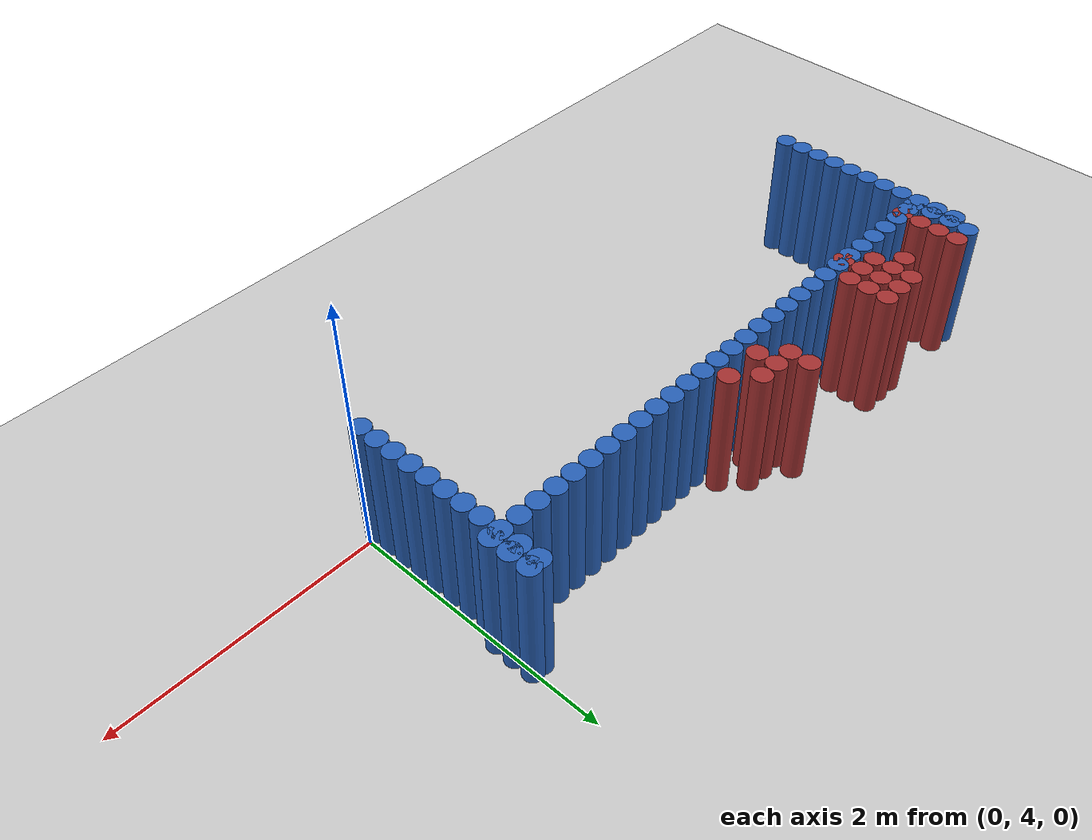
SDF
<sdf version="1.6">
 <world name="barn_world">
  <model name="ground_plane">
   <static>1</static>
   <link name="link">
    <collision name="collision">
     <geometry><plane><normal>0 0 1</normal><size>100 100</size></plane></geometry>
    </collision>
    <visual name="visual">
     <geometry><plane><normal>0 0 1</normal><size>100 100</size></plane></geometry>
     <material>
      <script><uri>file://media/materials/scripts/gazebo.material</uri><name>Gazebo/Grey</name></script>
     </material>
    </visual>
   </link>
  </model>
  <model name="unit_cylinder_80">
   <static>1</static>
   <pose>-0.0750 3.9750 0.5 0 0 0</pose>
   <link name="link">
    <collision name="collision">
     <geometry><cylinder><radius>0.075</radius><length>1</length></cylinder></geometry>
    </collision>
    <visual name="visual">
     <geometry><cylinder><radius>0.075</radius><length>1</length></cylinder></geometry>
     <material><ambient>0.152 0.379 0.72 1</ambient><diffuse>0.152 0.379 0.72 1</diffuse></material>
    </visual>
   </link>
  </model>
  <model name="unit_cylinder_81">
   <static>1</static>
   <pose>-4.4250 3.9750 0.5 0 0 0</pose>
   <link name="link">
    <collision name="collision">
     <geometry><cylinder><radius>0.075</radius><length>1</length></cylinder></geometry>
    </collision>
    <visual name="visual">
     <geometry><cylinder><radius>0.075</radius><length>1</length></cylinder></geometry>
     <material><ambient>0.152 0.379 0.72 1</ambient><diffuse>0.152 0.379 0.72 1</diffuse></material>
    </visual>
   </link>
  </model>
  <model name="unit_cylinder_82">
   <static>1</static>
   <pose>-0.0750 4.1250 0.5 0 0 0</pose>
   <link name="link">
    <collision name="collision">
     <geometry><cylinder><radius>0.075</radius><length>1</length></cylinder></geometry>
    </collision>
    <visual name="visual">
     <geometry><cylinder><radius>0.075</radius><length>1</length></cylinder></geometry>
     <material><ambient>0.152 0.379 0.72 1</ambient><diffuse>0.152 0.379 0.72 1</diffuse></material>
    </visual>
   </link>
  </model>
  <model name="unit_cylinder_83">
   <static>1</static>
   <pose>-4.4250 4.1250 0.5 0 0 0</pose>
   <link name="link">
    <collision name="collision">
     <geometry><cylinder><radius>0.075</radius><length>1</length></cylinder></geometry>
    </collision>
    <visual name="visual">
     <geometry><cylinder><radius>0.075</radius><length>1</length></cylinder></geometry>
     <material><ambient>0.152 0.379 0.72 1</ambient><diffuse>0.152 0.379 0.72 1</diffuse></material>
    </visual>
   </link>
  </model>
  <model name="unit_cylinder_84">
   <static>1</static>
   <pose>-0.0750 4.2750 0.5 0 0 0</pose>
   <link name="link">
    <collision name="collision">
     <geometry><cylinder><radius>0.075</radius><length>1</length></cylinder></geometry>
    </collision>
    <visual name="visual">
     <geometry><cylinder><radius>0.075</radius><length>1</length></cylinder></geometry>
     <material><ambient>0.152 0.379 0.72 1</ambient><diffuse>0.152 0.379 0.72 1</diffuse></material>
    </visual>
   </link>
  </model>
  <model name="unit_cylinder_85">
   <static>1</static>
   <pose>-4.4250 4.2750 0.5 0 0 0</pose>
   <link name="link">
    <collision name="collision">
     <geometry><cylinder><radius>0.075</radius><length>1</length></cylinder></geometry>
    </collision>
    <visual name="visual">
     <geometry><cylinder><radius>0.075</radius><length>1</length></cylinder></geometry>
     <material><ambient>0.152 0.379 0.72 1</ambient><diffuse>0.152 0.379 0.72 1</diffuse></material>
    </visual>
   </link>
  </model>
  <model name="unit_cylinder_86">
   <static>1</static>
   <pose>-0.0750 4.4250 0.5 0 0 0</pose>
   <link name="link">
    <collision name="collision">
     <geometry><cylinder><radius>0.075</radius><length>1</length></cylinder></geometry>
    </collision>
    <visual name="visual">
     <geometry><cylinder><radius>0.075</radius><length>1</length></cylinder></geometry>
     <material><ambient>0.152 0.379 0.72 1</ambient><diffuse>0.152 0.379 0.72 1</diffuse></material>
    </visual>
   </link>
  </model>
  <model name="unit_cylinder_87">
   <static>1</static>
   <pose>-4.4250 4.4250 0.5 0 0 0</pose>
   <link name="link">
    <collision name="collision">
     <geometry><cylinder><radius>0.075</radius><length>1</length></cylinder></geometry>
    </collision>
    <visual name="visual">
     <geometry><cylinder><radius>0.075</radius><length>1</length></cylinder></geometry>
     <material><ambient>0.152 0.379 0.72 1</ambient><diffuse>0.152 0.379 0.72 1</diffuse></material>
    </visual>
   </link>
  </model>
  <model name="unit_cylinder_88">
   <static>1</static>
   <pose>-0.0750 4.5750 0.5 0 0 0</pose>
   <link name="link">
    <collision name="collision">
     <geometry><cylinder><radius>0.075</radius><length>1</length></cylinder></geometry>
    </collision>
    <visual name="visual">
     <geometry><cylinder><radius>0.075</radius><length>1</length></cylinder></geometry>
     <material><ambient>0.152 0.379 0.72 1</ambient><diffuse>0.152 0.379 0.72 1</diffuse></material>
    </visual>
   </link>
  </model>
  <model name="unit_cylinder_89">
   <static>1</static>
   <pose>-4.4250 4.5750 0.5 0 0 0</pose>
   <link name="link">
    <collision name="collision">
     <geometry><cylinder><radius>0.075</radius><length>1</length></cylinder></geometry>
    </collision>
    <visual name="visual">
     <geometry><cylinder><radius>0.075</radius><length>1</length></cylinder></geometry>
     <material><ambient>0.152 0.379 0.72 1</ambient><diffuse>0.152 0.379 0.72 1</diffuse></material>
    </visual>
   </link>
  </model>
  <model name="unit_cylinder_90">
   <static>1</static>
   <pose>-0.0750 4.7250 0.5 0 0 0</pose>
   <link name="link">
    <collision name="collision">
     <geometry><cylinder><radius>0.075</radius><length>1</length></cylinder></geometry>
    </collision>
    <visual name="visual">
     <geometry><cylinder><radius>0.075</radius><length>1</length></cylinder></geometry>
     <material><ambient>0.152 0.379 0.72 1</ambient><diffuse>0.152 0.379 0.72 1</diffuse></material>
    </visual>
   </link>
  </model>
  <model name="unit_cylinder_91">
   <static>1</static>
   <pose>-4.4250 4.7250 0.5 0 0 0</pose>
   <link name="link">
    <collision name="collision">
     <geometry><cylinder><radius>0.075</radius><length>1</length></cylinder></geometry>
    </collision>
    <visual name="visual">
     <geometry><cylinder><radius>0.075</radius><length>1</length></cylinder></geometry>
     <material><ambient>0.152 0.379 0.72 1</ambient><diffuse>0.152 0.379 0.72 1</diffuse></material>
    </visual>
   </link>
  </model>
  <model name="unit_cylinder_92">
   <static>1</static>
   <pose>-0.0750 4.8750 0.5 0 0 0</pose>
   <link name="link">
    <collision name="collision">
     <geometry><cylinder><radius>0.075</radius><length>1</length></cylinder></geometry>
    </collision>
    <visual name="visual">
     <geometry><cylinder><radius>0.075</radius><length>1</length></cylinder></geometry>
     <material><ambient>0.152 0.379 0.72 1</ambient><diffuse>0.152 0.379 0.72 1</diffuse></material>
    </visual>
   </link>
  </model>
  <model name="unit_cylinder_93">
   <static>1</static>
   <pose>-4.4250 4.8750 0.5 0 0 0</pose>
   <link name="link">
    <collision name="collision">
     <geometry><cylinder><radius>0.075</radius><length>1</length></cylinder></geometry>
    </collision>
    <visual name="visual">
     <geometry><cylinder><radius>0.075</radius><length>1</length></cylinder></geometry>
     <material><ambient>0.152 0.379 0.72 1</ambient><diffuse>0.152 0.379 0.72 1</diffuse></material>
    </visual>
   </link>
  </model>
  <model name="unit_cylinder_94">
   <static>1</static>
   <pose>-0.0750 5.0250 0.5 0 0 0</pose>
   <link name="link">
    <collision name="collision">
     <geometry><cylinder><radius>0.075</radius><length>1</length></cylinder></geometry>
    </collision>
    <visual name="visual">
     <geometry><cylinder><radius>0.075</radius><length>1</length></cylinder></geometry>
     <material><ambient>0.152 0.379 0.72 1</ambient><diffuse>0.152 0.379 0.72 1</diffuse></material>
    </visual>
   </link>
  </model>
  <model name="unit_cylinder_95">
   <static>1</static>
   <pose>-4.4250 5.0250 0.5 0 0 0</pose>
   <link name="link">
    <collision name="collision">
     <geometry><cylinder><radius>0.075</radius><length>1</length></cylinder></geometry>
    </collision>
    <visual name="visual">
     <geometry><cylinder><radius>0.075</radius><length>1</length></cylinder></geometry>
     <material><ambient>0.152 0.379 0.72 1</ambient><diffuse>0.152 0.379 0.72 1</diffuse></material>
    </visual>
   </link>
  </model>
  <model name="unit_cylinder_96">
   <static>1</static>
   <pose>-0.0750 5.1750 0.5 0 0 0</pose>
   <link name="link">
    <collision name="collision">
     <geometry><cylinder><radius>0.075</radius><length>1</length></cylinder></geometry>
    </collision>
    <visual name="visual">
     <geometry><cylinder><radius>0.075</radius><length>1</length></cylinder></geometry>
     <material><ambient>0.152 0.379 0.72 1</ambient><diffuse>0.152 0.379 0.72 1</diffuse></material>
    </visual>
   </link>
  </model>
  <model name="unit_cylinder_97">
   <static>1</static>
   <pose>-0.2250 5.1750 0.5 0 0 0</pose>
   <link name="link">
    <collision name="collision">
     <geometry><cylinder><radius>0.075</radius><length>1</length></cylinder></geometry>
    </collision>
    <visual name="visual">
     <geometry><cylinder><radius>0.075</radius><length>1</length></cylinder></geometry>
     <material><ambient>0.152 0.379 0.72 1</ambient><diffuse>0.152 0.379 0.72 1</diffuse></material>
    </visual>
   </link>
  </model>
  <model name="unit_cylinder_98">
   <static>1</static>
   <pose>-0.3750 5.1750 0.5 0 0 0</pose>
   <link name="link">
    <collision name="collision">
     <geometry><cylinder><radius>0.075</radius><length>1</length></cylinder></geometry>
    </collision>
    <visual name="visual">
     <geometry><cylinder><radius>0.075</radius><length>1</length></cylinder></geometry>
     <material><ambient>0.152 0.379 0.72 1</ambient><diffuse>0.152 0.379 0.72 1</diffuse></material>
    </visual>
   </link>
  </model>
  <model name="unit_cylinder_99">
   <static>1</static>
   <pose>-0.5250 5.1750 0.5 0 0 0</pose>
   <link name="link">
    <collision name="collision">
     <geometry><cylinder><radius>0.075</radius><length>1</length></cylinder></geometry>
    </collision>
    <visual name="visual">
     <geometry><cylinder><radius>0.075</radius><length>1</length></cylinder></geometry>
     <material><ambient>0.152 0.379 0.72 1</ambient><diffuse>0.152 0.379 0.72 1</diffuse></material>
    </visual>
   </link>
  </model>
  <model name="unit_cylinder_100">
   <static>1</static>
   <pose>-0.6750 5.1750 0.5 0 0 0</pose>
   <link name="link">
    <collision name="collision">
     <geometry><cylinder><radius>0.075</radius><length>1</length></cylinder></geometry>
    </collision>
    <visual name="visual">
     <geometry><cylinder><radius>0.075</radius><length>1</length></cylinder></geometry>
     <material><ambient>0.152 0.379 0.72 1</ambient><diffuse>0.152 0.379 0.72 1</diffuse></material>
    </visual>
   </link>
  </model>
  <model name="unit_cylinder_101">
   <static>1</static>
   <pose>-0.8250 5.1750 0.5 0 0 0</pose>
   <link name="link">
    <collision name="collision">
     <geometry><cylinder><radius>0.075</radius><length>1</length></cylinder></geometry>
    </collision>
    <visual name="visual">
     <geometry><cylinder><radius>0.075</radius><length>1</length></cylinder></geometry>
     <material><ambient>0.152 0.379 0.72 1</ambient><diffuse>0.152 0.379 0.72 1</diffuse></material>
    </visual>
   </link>
  </model>
  <model name="unit_cylinder_102">
   <static>1</static>
   <pose>-0.9750 5.1750 0.5 0 0 0</pose>
   <link name="link">
    <collision name="collision">
     <geometry><cylinder><radius>0.075</radius><length>1</length></cylinder></geometry>
    </collision>
    <visual name="visual">
     <geometry><cylinder><radius>0.075</radius><length>1</length></cylinder></geometry>
     <material><ambient>0.152 0.379 0.72 1</ambient><diffuse>0.152 0.379 0.72 1</diffuse></material>
    </visual>
   </link>
  </model>
  <model name="unit_cylinder_103">
   <static>1</static>
   <pose>-1.1250 5.1750 0.5 0 0 0</pose>
   <link name="link">
    <collision name="collision">
     <geometry><cylinder><radius>0.075</radius><length>1</length></cylinder></geometry>
    </collision>
    <visual name="visual">
     <geometry><cylinder><radius>0.075</radius><length>1</length></cylinder></geometry>
     <material><ambient>0.152 0.379 0.72 1</ambient><diffuse>0.152 0.379 0.72 1</diffuse></material>
    </visual>
   </link>
  </model>
  <model name="unit_cylinder_104">
   <static>1</static>
   <pose>-1.2750 5.1750 0.5 0 0 0</pose>
   <link name="link">
    <collision name="collision">
     <geometry><cylinder><radius>0.075</radius><length>1</length></cylinder></geometry>
    </collision>
    <visual name="visual">
     <geometry><cylinder><radius>0.075</radius><length>1</length></cylinder></geometry>
     <material><ambient>0.152 0.379 0.72 1</ambient><diffuse>0.152 0.379 0.72 1</diffuse></material>
    </visual>
   </link>
  </model>
  <model name="unit_cylinder_105">
   <static>1</static>
   <pose>-1.4250 5.1750 0.5 0 0 0</pose>
   <link name="link">
    <collision name="collision">
     <geometry><cylinder><radius>0.075</radius><length>1</length></cylinder></geometry>
    </collision>
    <visual name="visual">
     <geometry><cylinder><radius>0.075</radius><length>1</length></cylinder></geometry>
     <material><ambient>0.152 0.379 0.72 1</ambient><diffuse>0.152 0.379 0.72 1</diffuse></material>
    </visual>
   </link>
  </model>
  <model name="unit_cylinder_106">
   <static>1</static>
   <pose>-1.5750 5.1750 0.5 0 0 0</pose>
   <link name="link">
    <collision name="collision">
     <geometry><cylinder><radius>0.075</radius><length>1</length></cylinder></geometry>
    </collision>
    <visual name="visual">
     <geometry><cylinder><radius>0.075</radius><length>1</length></cylinder></geometry>
     <material><ambient>0.152 0.379 0.72 1</ambient><diffuse>0.152 0.379 0.72 1</diffuse></material>
    </visual>
   </link>
  </model>
  <model name="unit_cylinder_107">
   <static>1</static>
   <pose>-1.7250 5.1750 0.5 0 0 0</pose>
   <link name="link">
    <collision name="collision">
     <geometry><cylinder><radius>0.075</radius><length>1</length></cylinder></geometry>
    </collision>
    <visual name="visual">
     <geometry><cylinder><radius>0.075</radius><length>1</length></cylinder></geometry>
     <material><ambient>0.152 0.379 0.72 1</ambient><diffuse>0.152 0.379 0.72 1</diffuse></material>
    </visual>
   </link>
  </model>
  <model name="unit_cylinder_108">
   <static>1</static>
   <pose>-1.8750 5.1750 0.5 0 0 0</pose>
   <link name="link">
    <collision name="collision">
     <geometry><cylinder><radius>0.075</radius><length>1</length></cylinder></geometry>
    </collision>
    <visual name="visual">
     <geometry><cylinder><radius>0.075</radius><length>1</length></cylinder></geometry>
     <material><ambient>0.152 0.379 0.72 1</ambient><diffuse>0.152 0.379 0.72 1</diffuse></material>
    </visual>
   </link>
  </model>
  <model name="unit_cylinder_109">
   <static>1</static>
   <pose>-2.0250 5.1750 0.5 0 0 0</pose>
   <link name="link">
    <collision name="collision">
     <geometry><cylinder><radius>0.075</radius><length>1</length></cylinder></geometry>
    </collision>
    <visual name="visual">
     <geometry><cylinder><radius>0.075</radius><length>1</length></cylinder></geometry>
     <material><ambient>0.152 0.379 0.72 1</ambient><diffuse>0.152 0.379 0.72 1</diffuse></material>
    </visual>
   </link>
  </model>
  <model name="unit_cylinder_110">
   <static>1</static>
   <pose>-2.1750 5.1750 0.5 0 0 0</pose>
   <link name="link">
    <collision name="collision">
     <geometry><cylinder><radius>0.075</radius><length>1</length></cylinder></geometry>
    </collision>
    <visual name="visual">
     <geometry><cylinder><radius>0.075</radius><length>1</length></cylinder></geometry>
     <material><ambient>0.152 0.379 0.72 1</ambient><diffuse>0.152 0.379 0.72 1</diffuse></material>
    </visual>
   </link>
  </model>
  <model name="unit_cylinder_111">
   <static>1</static>
   <pose>-2.3250 5.1750 0.5 0 0 0</pose>
   <link name="link">
    <collision name="collision">
     <geometry><cylinder><radius>0.075</radius><length>1</length></cylinder></geometry>
    </collision>
    <visual name="visual">
     <geometry><cylinder><radius>0.075</radius><length>1</length></cylinder></geometry>
     <material><ambient>0.152 0.379 0.72 1</ambient><diffuse>0.152 0.379 0.72 1</diffuse></material>
    </visual>
   </link>
  </model>
  <model name="unit_cylinder_112">
   <static>1</static>
   <pose>-2.4750 5.1750 0.5 0 0 0</pose>
   <link name="link">
    <collision name="collision">
     <geometry><cylinder><radius>0.075</radius><length>1</length></cylinder></geometry>
    </collision>
    <visual name="visual">
     <geometry><cylinder><radius>0.075</radius><length>1</length></cylinder></geometry>
     <material><ambient>0.152 0.379 0.72 1</ambient><diffuse>0.152 0.379 0.72 1</diffuse></material>
    </visual>
   </link>
  </model>
  <model name="unit_cylinder_113">
   <static>1</static>
   <pose>-2.6250 5.1750 0.5 0 0 0</pose>
   <link name="link">
    <collision name="collision">
     <geometry><cylinder><radius>0.075</radius><length>1</length></cylinder></geometry>
    </collision>
    <visual name="visual">
     <geometry><cylinder><radius>0.075</radius><length>1</length></cylinder></geometry>
     <material><ambient>0.152 0.379 0.72 1</ambient><diffuse>0.152 0.379 0.72 1</diffuse></material>
    </visual>
   </link>
  </model>
  <model name="unit_cylinder_114">
   <static>1</static>
   <pose>-2.7750 5.1750 0.5 0 0 0</pose>
   <link name="link">
    <collision name="collision">
     <geometry><cylinder><radius>0.075</radius><length>1</length></cylinder></geometry>
    </collision>
    <visual name="visual">
     <geometry><cylinder><radius>0.075</radius><length>1</length></cylinder></geometry>
     <material><ambient>0.152 0.379 0.72 1</ambient><diffuse>0.152 0.379 0.72 1</diffuse></material>
    </visual>
   </link>
  </model>
  <model name="unit_cylinder_115">
   <static>1</static>
   <pose>-2.9250 5.1750 0.5 0 0 0</pose>
   <link name="link">
    <collision name="collision">
     <geometry><cylinder><radius>0.075</radius><length>1</length></cylinder></geometry>
    </collision>
    <visual name="visual">
     <geometry><cylinder><radius>0.075</radius><length>1</length></cylinder></geometry>
     <material><ambient>0.152 0.379 0.72 1</ambient><diffuse>0.152 0.379 0.72 1</diffuse></material>
    </visual>
   </link>
  </model>
  <model name="unit_cylinder_116">
   <static>1</static>
   <pose>-3.0750 5.1750 0.5 0 0 0</pose>
   <link name="link">
    <collision name="collision">
     <geometry><cylinder><radius>0.075</radius><length>1</length></cylinder></geometry>
    </collision>
    <visual name="visual">
     <geometry><cylinder><radius>0.075</radius><length>1</length></cylinder></geometry>
     <material><ambient>0.152 0.379 0.72 1</ambient><diffuse>0.152 0.379 0.72 1</diffuse></material>
    </visual>
   </link>
  </model>
  <model name="unit_cylinder_117">
   <static>1</static>
   <pose>-3.2250 5.1750 0.5 0 0 0</pose>
   <link name="link">
    <collision name="collision">
     <geometry><cylinder><radius>0.075</radius><length>1</length></cylinder></geometry>
    </collision>
    <visual name="visual">
     <geometry><cylinder><radius>0.075</radius><length>1</length></cylinder></geometry>
     <material><ambient>0.152 0.379 0.72 1</ambient><diffuse>0.152 0.379 0.72 1</diffuse></material>
    </visual>
   </link>
  </model>
  <model name="unit_cylinder_118">
   <static>1</static>
   <pose>-3.3750 5.1750 0.5 0 0 0</pose>
   <link name="link">
    <collision name="collision">
     <geometry><cylinder><radius>0.075</radius><length>1</length></cylinder></geometry>
    </collision>
    <visual name="visual">
     <geometry><cylinder><radius>0.075</radius><length>1</length></cylinder></geometry>
     <material><ambient>0.152 0.379 0.72 1</ambient><diffuse>0.152 0.379 0.72 1</diffuse></material>
    </visual>
   </link>
  </model>
  <model name="unit_cylinder_119">
   <static>1</static>
   <pose>-3.5250 5.1750 0.5 0 0 0</pose>
   <link name="link">
    <collision name="collision">
     <geometry><cylinder><radius>0.075</radius><length>1</length></cylinder></geometry>
    </collision>
    <visual name="visual">
     <geometry><cylinder><radius>0.075</radius><length>1</length></cylinder></geometry>
     <material><ambient>0.152 0.379 0.72 1</ambient><diffuse>0.152 0.379 0.72 1</diffuse></material>
    </visual>
   </link>
  </model>
  <model name="unit_cylinder_120">
   <static>1</static>
   <pose>-3.6750 5.1750 0.5 0 0 0</pose>
   <link name="link">
    <collision name="collision">
     <geometry><cylinder><radius>0.075</radius><length>1</length></cylinder></geometry>
    </collision>
    <visual name="visual">
     <geometry><cylinder><radius>0.075</radius><length>1</length></cylinder></geometry>
     <material><ambient>0.152 0.379 0.72 1</ambient><diffuse>0.152 0.379 0.72 1</diffuse></material>
    </visual>
   </link>
  </model>
  <model name="unit_cylinder_121">
   <static>1</static>
   <pose>-3.8250 5.1750 0.5 0 0 0</pose>
   <link name="link">
    <collision name="collision">
     <geometry><cylinder><radius>0.075</radius><length>1</length></cylinder></geometry>
    </collision>
    <visual name="visual">
     <geometry><cylinder><radius>0.075</radius><length>1</length></cylinder></geometry>
     <material><ambient>0.152 0.379 0.72 1</ambient><diffuse>0.152 0.379 0.72 1</diffuse></material>
    </visual>
   </link>
  </model>
  <model name="unit_cylinder_122">
   <static>1</static>
   <pose>-3.9750 5.1750 0.5 0 0 0</pose>
   <link name="link">
    <collision name="collision">
     <geometry><cylinder><radius>0.075</radius><length>1</length></cylinder></geometry>
    </collision>
    <visual name="visual">
     <geometry><cylinder><radius>0.075</radius><length>1</length></cylinder></geometry>
     <material><ambient>0.152 0.379 0.72 1</ambient><diffuse>0.152 0.379 0.72 1</diffuse></material>
    </visual>
   </link>
  </model>
  <model name="unit_cylinder_123">
   <static>1</static>
   <pose>-4.1250 5.1750 0.5 0 0 0</pose>
   <link name="link">
    <collision name="collision">
     <geometry><cylinder><radius>0.075</radius><length>1</length></cylinder></geometry>
    </collision>
    <visual name="visual">
     <geometry><cylinder><radius>0.075</radius><length>1</length></cylinder></geometry>
     <material><ambient>0.152 0.379 0.72 1</ambient><diffuse>0.152 0.379 0.72 1</diffuse></material>
    </visual>
   </link>
  </model>
  <model name="unit_cylinder_124">
   <static>1</static>
   <pose>-4.2750 5.1750 0.5 0 0 0</pose>
   <link name="link">
    <collision name="collision">
     <geometry><cylinder><radius>0.075</radius><length>1</length></cylinder></geometry>
    </collision>
    <visual name="visual">
     <geometry><cylinder><radius>0.075</radius><length>1</length></cylinder></geometry>
     <material><ambient>0.152 0.379 0.72 1</ambient><diffuse>0.152 0.379 0.72 1</diffuse></material>
    </visual>
   </link>
  </model>
  <model name="unit_cylinder_125">
   <static>1</static>
   <pose>-4.4250 5.1750 0.5 0 0 0</pose>
   <link name="link">
    <collision name="collision">
     <geometry><cylinder><radius>0.075</radius><length>1</length></cylinder></geometry>
    </collision>
    <visual name="visual">
     <geometry><cylinder><radius>0.075</radius><length>1</length></cylinder></geometry>
     <material><ambient>0.152 0.379 0.72 1</ambient><diffuse>0.152 0.379 0.72 1</diffuse></material>
    </visual>
   </link>
  </model>
  <model name="unit_cylinder_126">
   <static>1</static>
   <pose>-4.3500 5.1750 0.5 0 0 0</pose>
   <link name="link">
    <collision name="collision">
     <geometry><cylinder><radius>0.075</radius><length>1</length></cylinder></geometry>
    </collision>
    <visual name="visual">
     <geometry><cylinder><radius>0.075</radius><length>1</length></cylinder></geometry>
     <material><ambient>0.152 0.379 0.72 1</ambient><diffuse>0.152 0.379 0.72 1</diffuse></material>
    </visual>
   </link>
  </model>
  <model name="unit_cylinder_127">
   <static>1</static>
   <pose>-4.3500 5.3250 0.5 0 0 0</pose>
   <link name="link">
    <collision name="collision">
     <geometry><cylinder><radius>0.075</radius><length>1</length></cylinder></geometry>
    </collision>
    <visual name="visual">
     <geometry><cylinder><radius>0.075</radius><length>1</length></cylinder></geometry>
     <material><ambient>0.152 0.379 0.72 1</ambient><diffuse>0.152 0.379 0.72 1</diffuse></material>
    </visual>
   </link>
  </model>
  <model name="unit_cylinder_128">
   <static>1</static>
   <pose>-4.3500 5.4750 0.5 0 0 0</pose>
   <link name="link">
    <collision name="collision">
     <geometry><cylinder><radius>0.075</radius><length>1</length></cylinder></geometry>
    </collision>
    <visual name="visual">
     <geometry><cylinder><radius>0.075</radius><length>1</length></cylinder></geometry>
     <material><ambient>0.152 0.379 0.72 1</ambient><diffuse>0.152 0.379 0.72 1</diffuse></material>
    </visual>
   </link>
  </model>
  <model name="unit_cylinder_129">
   <static>1</static>
   <pose>-4.3500 5.6250 0.5 0 0 0</pose>
   <link name="link">
    <collision name="collision">
     <geometry><cylinder><radius>0.075</radius><length>1</length></cylinder></geometry>
    </collision>
    <visual name="visual">
     <geometry><cylinder><radius>0.075</radius><length>1</length></cylinder></geometry>
     <material><ambient>0.152 0.379 0.72 1</ambient><diffuse>0.152 0.379 0.72 1</diffuse></material>
    </visual>
   </link>
  </model>
  <model name="unit_cylinder_156">
   <static>1</static>
   <pose>-4.2000 5.1750 0.5 0 0 0</pose>
   <link name="link">
    <collision name="collision">
     <geometry><cylinder><radius>0.075</radius><length>1</length></cylinder></geometry>
    </collision>
    <visual name="visual">
     <geometry><cylinder><radius>0.075</radius><length>1</length></cylinder></geometry>
     <material><ambient>0.648 0.192 0.192 1</ambient><diffuse>0.648 0.192 0.192 1</diffuse></material>
    </visual>
   </link>
  </model>
  <model name="unit_cylinder_157">
   <static>1</static>
   <pose>-4.2000 5.3250 0.5 0 0 0</pose>
   <link name="link">
    <collision name="collision">
     <geometry><cylinder><radius>0.075</radius><length>1</length></cylinder></geometry>
    </collision>
    <visual name="visual">
     <geometry><cylinder><radius>0.075</radius><length>1</length></cylinder></geometry>
     <material><ambient>0.648 0.192 0.192 1</ambient><diffuse>0.648 0.192 0.192 1</diffuse></material>
    </visual>
   </link>
  </model>
  <model name="unit_cylinder_158">
   <static>1</static>
   <pose>-4.2000 5.4750 0.5 0 0 0</pose>
   <link name="link">
    <collision name="collision">
     <geometry><cylinder><radius>0.075</radius><length>1</length></cylinder></geometry>
    </collision>
    <visual name="visual">
     <geometry><cylinder><radius>0.075</radius><length>1</length></cylinder></geometry>
     <material><ambient>0.648 0.192 0.192 1</ambient><diffuse>0.648 0.192 0.192 1</diffuse></material>
    </visual>
   </link>
  </model>
  <model name="unit_cylinder_159">
   <static>1</static>
   <pose>-4.2000 5.6250 0.5 0 0 0</pose>
   <link name="link">
    <collision name="collision">
     <geometry><cylinder><radius>0.075</radius><length>1</length></cylinder></geometry>
    </collision>
    <visual name="visual">
     <geometry><cylinder><radius>0.075</radius><length>1</length></cylinder></geometry>
     <material><ambient>0.648 0.192 0.192 1</ambient><diffuse>0.648 0.192 0.192 1</diffuse></material>
    </visual>
   </link>
  </model>
  <model name="unit_cylinder_189">
   <static>1</static>
   <pose>-3.7500 5.4750 0.5 0 0 0</pose>
   <link name="link">
    <collision name="collision">
     <geometry><cylinder><radius>0.075</radius><length>1</length></cylinder></geometry>
    </collision>
    <visual name="visual">
     <geometry><cylinder><radius>0.075</radius><length>1</length></cylinder></geometry>
     <material><ambient>0.648 0.192 0.192 1</ambient><diffuse>0.648 0.192 0.192 1</diffuse></material>
    </visual>
   </link>
  </model>
  <model name="unit_cylinder_190">
   <static>1</static>
   <pose>-3.6000 5.3250 0.5 0 0 0</pose>
   <link name="link">
    <collision name="collision">
     <geometry><cylinder><radius>0.075</radius><length>1</length></cylinder></geometry>
    </collision>
    <visual name="visual">
     <geometry><cylinder><radius>0.075</radius><length>1</length></cylinder></geometry>
     <material><ambient>0.648 0.192 0.192 1</ambient><diffuse>0.648 0.192 0.192 1</diffuse></material>
    </visual>
   </link>
  </model>
  <model name="unit_cylinder_191">
   <static>1</static>
   <pose>-3.6000 5.4750 0.5 0 0 0</pose>
   <link name="link">
    <collision name="collision">
     <geometry><cylinder><radius>0.075</radius><length>1</length></cylinder></geometry>
    </collision>
    <visual name="visual">
     <geometry><cylinder><radius>0.075</radius><length>1</length></cylinder></geometry>
     <material><ambient>0.648 0.192 0.192 1</ambient><diffuse>0.648 0.192 0.192 1</diffuse></material>
    </visual>
   </link>
  </model>
  <model name="unit_cylinder_192">
   <static>1</static>
   <pose>-3.6000 5.6250 0.5 0 0 0</pose>
   <link name="link">
    <collision name="collision">
     <geometry><cylinder><radius>0.075</radius><length>1</length></cylinder></geometry>
    </collision>
    <visual name="visual">
     <geometry><cylinder><radius>0.075</radius><length>1</length></cylinder></geometry>
     <material><ambient>0.648 0.192 0.192 1</ambient><diffuse>0.648 0.192 0.192 1</diffuse></material>
    </visual>
   </link>
  </model>
  <model name="unit_cylinder_195">
   <static>1</static>
   <pose>-3.4500 5.1750 0.5 0 0 0</pose>
   <link name="link">
    <collision name="collision">
     <geometry><cylinder><radius>0.075</radius><length>1</length></cylinder></geometry>
    </collision>
    <visual name="visual">
     <geometry><cylinder><radius>0.075</radius><length>1</length></cylinder></geometry>
     <material><ambient>0.648 0.192 0.192 1</ambient><diffuse>0.648 0.192 0.192 1</diffuse></material>
    </visual>
   </link>
  </model>
  <model name="unit_cylinder_196">
   <static>1</static>
   <pose>-3.4500 5.3250 0.5 0 0 0</pose>
   <link name="link">
    <collision name="collision">
     <geometry><cylinder><radius>0.075</radius><length>1</length></cylinder></geometry>
    </collision>
    <visual name="visual">
     <geometry><cylinder><radius>0.075</radius><length>1</length></cylinder></geometry>
     <material><ambient>0.648 0.192 0.192 1</ambient><diffuse>0.648 0.192 0.192 1</diffuse></material>
    </visual>
   </link>
  </model>
  <model name="unit_cylinder_197">
   <static>1</static>
   <pose>-3.4500 5.4750 0.5 0 0 0</pose>
   <link name="link">
    <collision name="collision">
     <geometry><cylinder><radius>0.075</radius><length>1</length></cylinder></geometry>
    </collision>
    <visual name="visual">
     <geometry><cylinder><radius>0.075</radius><length>1</length></cylinder></geometry>
     <material><ambient>0.648 0.192 0.192 1</ambient><diffuse>0.648 0.192 0.192 1</diffuse></material>
    </visual>
   </link>
  </model>
  <model name="unit_cylinder_198">
   <static>1</static>
   <pose>-3.4500 5.6250 0.5 0 0 0</pose>
   <link name="link">
    <collision name="collision">
     <geometry><cylinder><radius>0.075</radius><length>1</length></cylinder></geometry>
    </collision>
    <visual name="visual">
     <geometry><cylinder><radius>0.075</radius><length>1</length></cylinder></geometry>
     <material><ambient>0.648 0.192 0.192 1</ambient><diffuse>0.648 0.192 0.192 1</diffuse></material>
    </visual>
   </link>
  </model>
  <model name="unit_cylinder_201">
   <static>1</static>
   <pose>-3.3000 5.3250 0.5 0 0 0</pose>
   <link name="link">
    <collision name="collision">
     <geometry><cylinder><radius>0.075</radius><length>1</length></cylinder></geometry>
    </collision>
    <visual name="visual">
     <geometry><cylinder><radius>0.075</radius><length>1</length></cylinder></geometry>
     <material><ambient>0.648 0.192 0.192 1</ambient><diffuse>0.648 0.192 0.192 1</diffuse></material>
    </visual>
   </link>
  </model>
  <model name="unit_cylinder_202">
   <static>1</static>
   <pose>-3.3000 5.4750 0.5 0 0 0</pose>
   <link name="link">
    <collision name="collision">
     <geometry><cylinder><radius>0.075</radius><length>1</length></cylinder></geometry>
    </collision>
    <visual name="visual">
     <geometry><cylinder><radius>0.075</radius><length>1</length></cylinder></geometry>
     <material><ambient>0.648 0.192 0.192 1</ambient><diffuse>0.648 0.192 0.192 1</diffuse></material>
    </visual>
   </link>
  </model>
  <model name="unit_cylinder_203">
   <static>1</static>
   <pose>-3.3000 5.6250 0.5 0 0 0</pose>
   <link name="link">
    <collision name="collision">
     <geometry><cylinder><radius>0.075</radius><length>1</length></cylinder></geometry>
    </collision>
    <visual name="visual">
     <geometry><cylinder><radius>0.075</radius><length>1</length></cylinder></geometry>
     <material><ambient>0.648 0.192 0.192 1</ambient><diffuse>0.648 0.192 0.192 1</diffuse></material>
    </visual>
   </link>
  </model>
  <model name="unit_cylinder_215">
   <static>1</static>
   <pose>-2.4000 5.4750 0.5 0 0 0</pose>
   <link name="link">
    <collision name="collision">
     <geometry><cylinder><radius>0.075</radius><length>1</length></cylinder></geometry>
    </collision>
    <visual name="visual">
     <geometry><cylinder><radius>0.075</radius><length>1</length></cylinder></geometry>
     <material><ambient>0.648 0.192 0.192 1</ambient><diffuse>0.648 0.192 0.192 1</diffuse></material>
    </visual>
   </link>
  </model>
  <model name="unit_cylinder_216">
   <static>1</static>
   <pose>-2.4000 5.6250 0.5 0 0 0</pose>
   <link name="link">
    <collision name="collision">
     <geometry><cylinder><radius>0.075</radius><length>1</length></cylinder></geometry>
    </collision>
    <visual name="visual">
     <geometry><cylinder><radius>0.075</radius><length>1</length></cylinder></geometry>
     <material><ambient>0.648 0.192 0.192 1</ambient><diffuse>0.648 0.192 0.192 1</diffuse></material>
    </visual>
   </link>
  </model>
  <model name="unit_cylinder_227">
   <static>1</static>
   <pose>-2.2500 5.3250 0.5 0 0 0</pose>
   <link name="link">
    <collision name="collision">
     <geometry><cylinder><radius>0.075</radius><length>1</length></cylinder></geometry>
    </collision>
    <visual name="visual">
     <geometry><cylinder><radius>0.075</radius><length>1</length></cylinder></geometry>
     <material><ambient>0.648 0.192 0.192 1</ambient><diffuse>0.648 0.192 0.192 1</diffuse></material>
    </visual>
   </link>
  </model>
  <model name="unit_cylinder_228">
   <static>1</static>
   <pose>-2.2500 5.4750 0.5 0 0 0</pose>
   <link name="link">
    <collision name="collision">
     <geometry><cylinder><radius>0.075</radius><length>1</length></cylinder></geometry>
    </collision>
    <visual name="visual">
     <geometry><cylinder><radius>0.075</radius><length>1</length></cylinder></geometry>
     <material><ambient>0.648 0.192 0.192 1</ambient><diffuse>0.648 0.192 0.192 1</diffuse></material>
    </visual>
   </link>
  </model>
  <model name="unit_cylinder_234">
   <static>1</static>
   <pose>-2.1000 5.4750 0.5 0 0 0</pose>
   <link name="link">
    <collision name="collision">
     <geometry><cylinder><radius>0.075</radius><length>1</length></cylinder></geometry>
    </collision>
    <visual name="visual">
     <geometry><cylinder><radius>0.075</radius><length>1</length></cylinder></geometry>
     <material><ambient>0.648 0.192 0.192 1</ambient><diffuse>0.648 0.192 0.192 1</diffuse></material>
    </visual>
   </link>
  </model>
  <model name="unit_cylinder_241">
   <static>1</static>
   <pose>-1.9500 5.3250 0.5 0 0 0</pose>
   <link name="link">
    <collision name="collision">
     <geometry><cylinder><radius>0.075</radius><length>1</length></cylinder></geometry>
    </collision>
    <visual name="visual">
     <geometry><cylinder><radius>0.075</radius><length>1</length></cylinder></geometry>
     <material><ambient>0.648 0.192 0.192 1</ambient><diffuse>0.648 0.192 0.192 1</diffuse></material>
    </visual>
   </link>
  </model>
  <model name="unit_cylinder_282">
   <static>1</static>
   <pose>0.0000 5.1750 0.5 0 0 0</pose>
   <link name="link">
    <collision name="collision">
     <geometry><cylinder><radius>0.075</radius><length>1</length></cylinder></geometry>
    </collision>
    <visual name="visual">
     <geometry><cylinder><radius>0.075</radius><length>1</length></cylinder></geometry>
     <material><ambient>0.152 0.379 0.72 1</ambient><diffuse>0.152 0.379 0.72 1</diffuse></material>
    </visual>
   </link>
  </model>
  <model name="unit_cylinder_283">
   <static>1</static>
   <pose>0.0000 5.3250 0.5 0 0 0</pose>
   <link name="link">
    <collision name="collision">
     <geometry><cylinder><radius>0.075</radius><length>1</length></cylinder></geometry>
    </collision>
    <visual name="visual">
     <geometry><cylinder><radius>0.075</radius><length>1</length></cylinder></geometry>
     <material><ambient>0.152 0.379 0.72 1</ambient><diffuse>0.152 0.379 0.72 1</diffuse></material>
    </visual>
   </link>
  </model>
  <model name="unit_cylinder_284">
   <static>1</static>
   <pose>0.0000 5.4750 0.5 0 0 0</pose>
   <link name="link">
    <collision name="collision">
     <geometry><cylinder><radius>0.075</radius><length>1</length></cylinder></geometry>
    </collision>
    <visual name="visual">
     <geometry><cylinder><radius>0.075</radius><length>1</length></cylinder></geometry>
     <material><ambient>0.152 0.379 0.72 1</ambient><diffuse>0.152 0.379 0.72 1</diffuse></material>
    </visual>
   </link>
  </model>
  <model name="unit_cylinder_342">
   <static>1</static>
   <pose>-0.0750 5.1750 0.5 0 0 0</pose>
   <link name="link">
    <collision name="collision">
     <geometry><cylinder><radius>0.075</radius><length>1</length></cylinder></geometry>
    </collision>
    <visual name="visual">
     <geometry><cylinder><radius>0.075</radius><length>1</length></cylinder></geometry>
     <material><ambient>0.152 0.379 0.72 1</ambient><diffuse>0.152 0.379 0.72 1</diffuse></material>
    </visual>
   </link>
  </model>
  <model name="unit_cylinder_343">
   <static>1</static>
   <pose>-4.4250 5.1750 0.5 0 0 0</pose>
   <link name="link">
    <collision name="collision">
     <geometry><cylinder><radius>0.075</radius><length>1</length></cylinder></geometry>
    </collision>
    <visual name="visual">
     <geometry><cylinder><radius>0.075</radius><length>1</length></cylinder></geometry>
     <material><ambient>0.152 0.379 0.72 1</ambient><diffuse>0.152 0.379 0.72 1</diffuse></material>
    </visual>
   </link>
  </model>
  <model name="unit_cylinder_344">
   <static>1</static>
   <pose>-0.0750 5.3250 0.5 0 0 0</pose>
   <link name="link">
    <collision name="collision">
     <geometry><cylinder><radius>0.075</radius><length>1</length></cylinder></geometry>
    </collision>
    <visual name="visual">
     <geometry><cylinder><radius>0.075</radius><length>1</length></cylinder></geometry>
     <material><ambient>0.152 0.379 0.72 1</ambient><diffuse>0.152 0.379 0.72 1</diffuse></material>
    </visual>
   </link>
  </model>
  <model name="unit_cylinder_345">
   <static>1</static>
   <pose>-4.4250 5.3250 0.5 0 0 0</pose>
   <link name="link">
    <collision name="collision">
     <geometry><cylinder><radius>0.075</radius><length>1</length></cylinder></geometry>
    </collision>
    <visual name="visual">
     <geometry><cylinder><radius>0.075</radius><length>1</length></cylinder></geometry>
     <material><ambient>0.152 0.379 0.72 1</ambient><diffuse>0.152 0.379 0.72 1</diffuse></material>
    </visual>
   </link>
  </model>
  <model name="unit_cylinder_346">
   <static>1</static>
   <pose>-0.0750 5.4750 0.5 0 0 0</pose>
   <link name="link">
    <collision name="collision">
     <geometry><cylinder><radius>0.075</radius><length>1</length></cylinder></geometry>
    </collision>
    <visual name="visual">
     <geometry><cylinder><radius>0.075</radius><length>1</length></cylinder></geometry>
     <material><ambient>0.152 0.379 0.72 1</ambient><diffuse>0.152 0.379 0.72 1</diffuse></material>
    </visual>
   </link>
  </model>
  <model name="unit_cylinder_347">
   <static>1</static>
   <pose>-4.4250 5.4750 0.5 0 0 0</pose>
   <link name="link">
    <collision name="collision">
     <geometry><cylinder><radius>0.075</radius><length>1</length></cylinder></geometry>
    </collision>
    <visual name="visual">
     <geometry><cylinder><radius>0.075</radius><length>1</length></cylinder></geometry>
     <material><ambient>0.152 0.379 0.72 1</ambient><diffuse>0.152 0.379 0.72 1</diffuse></material>
    </visual>
   </link>
  </model>
 </world>
</sdf>
